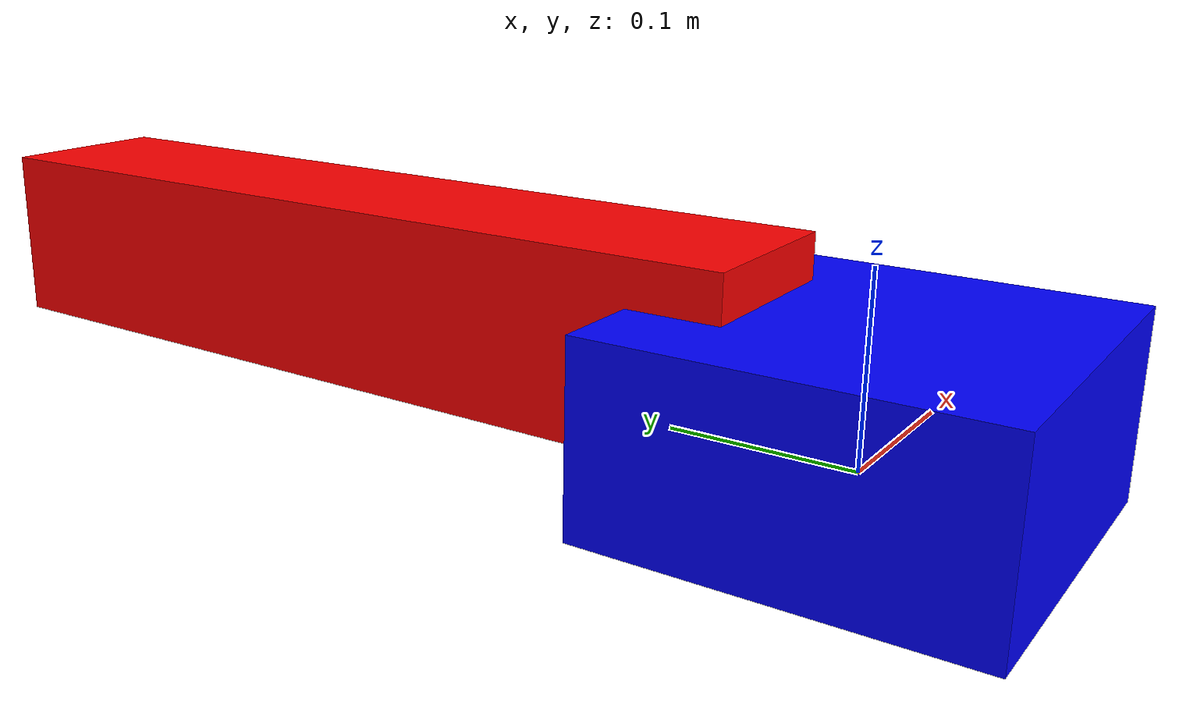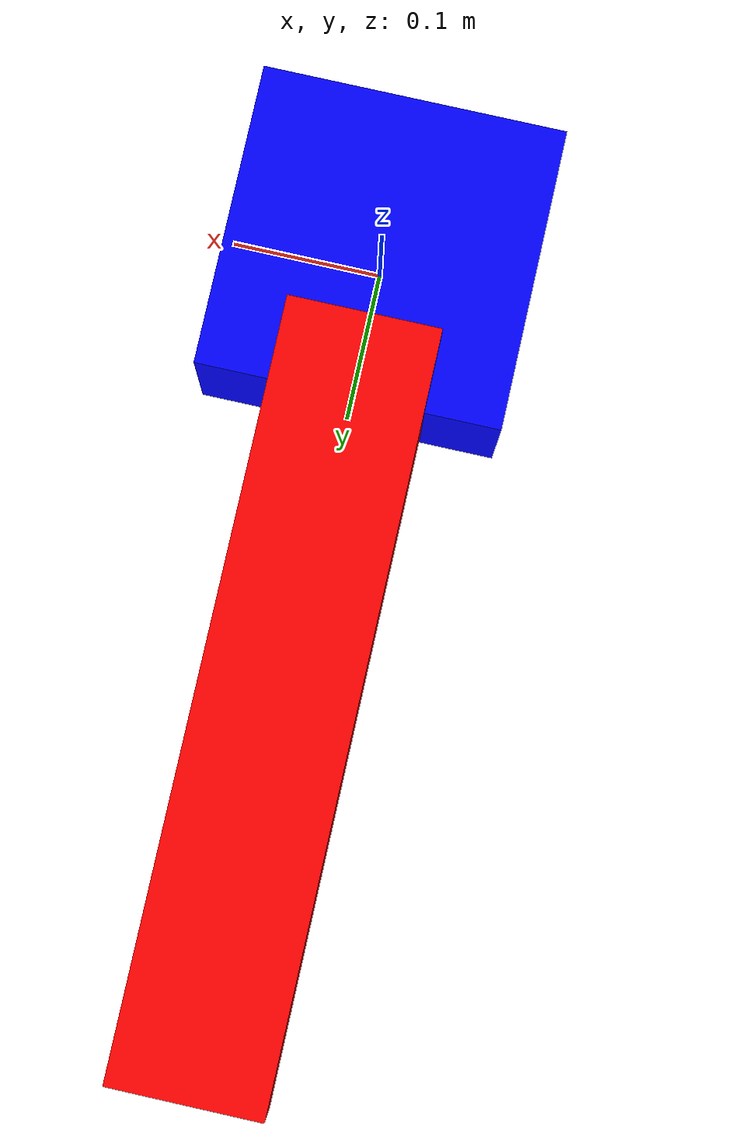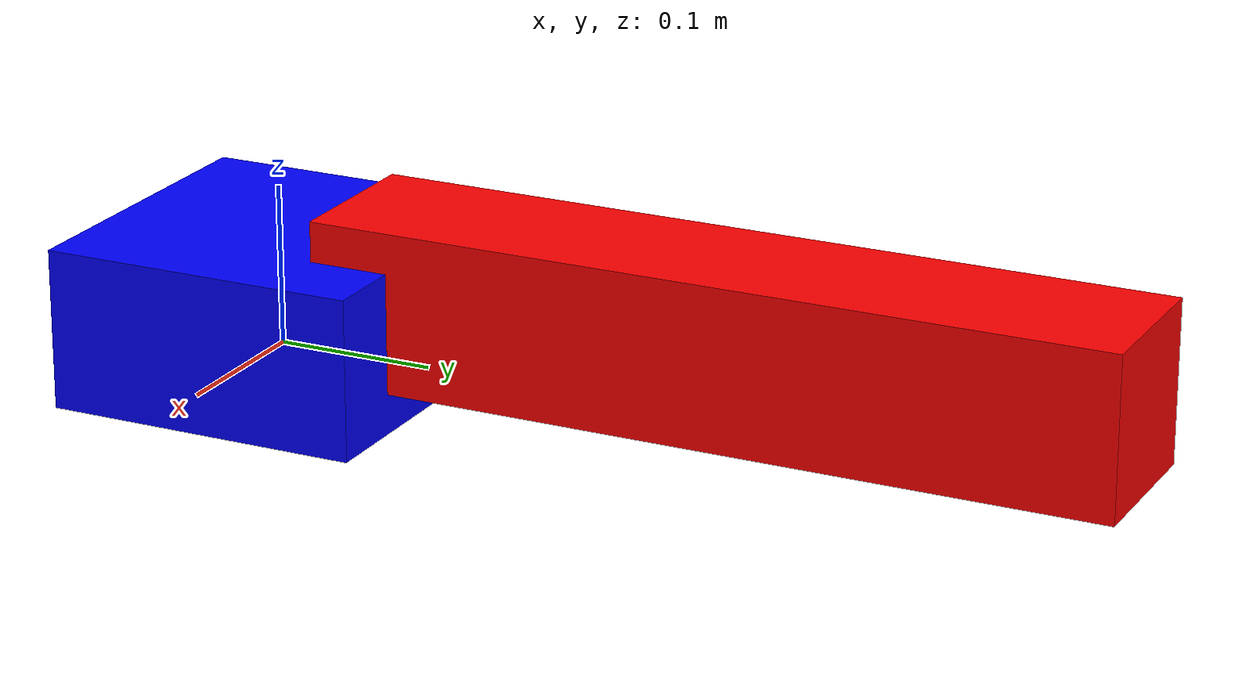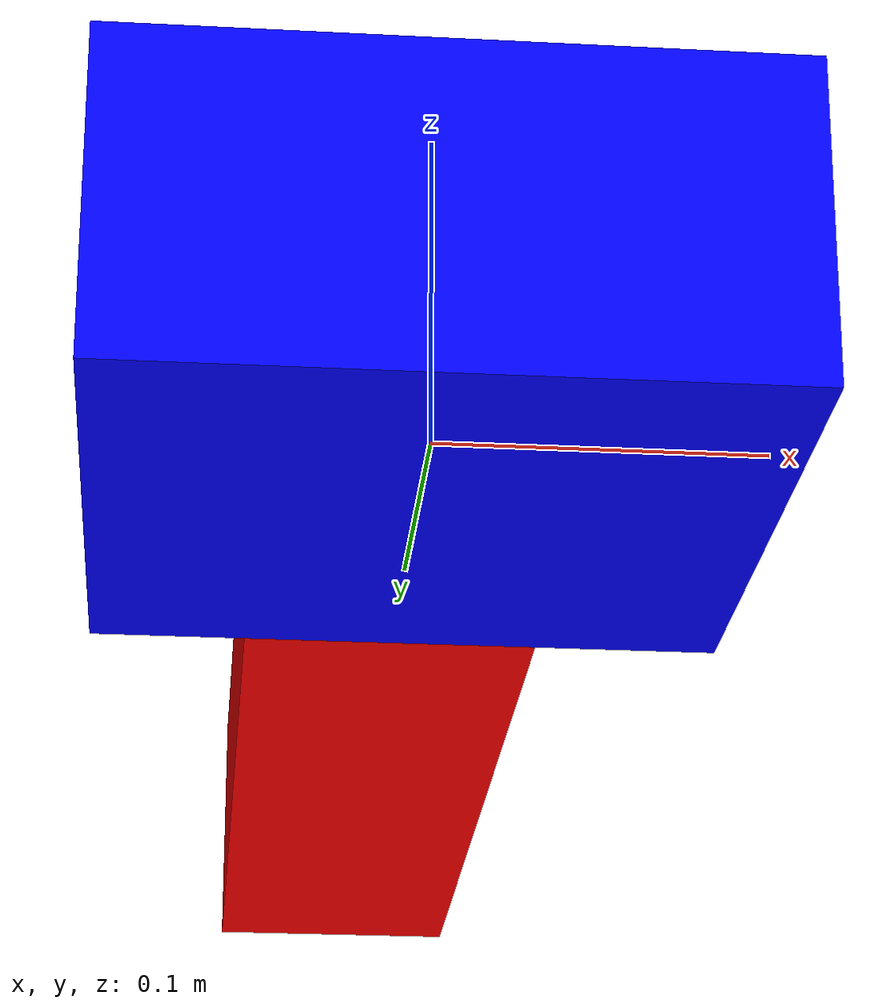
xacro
<?xml version="1.0"?>
<robot xmlns:xacro="http://www.ros.org/wiki/xacro" name="simple_robot">

    <material name="bright_red">
        <color rgba="1.0 0.0 0.0 1.0"/>
    </material>

    <material name="bright_blue">
        <color rgba="0.0 0.0 1.0 1.0"/>
    </material>

    <link name="base_link">
        <visual>
            <origin xyz="0 0 0.025" rpy="0 0 0"/>
            <geometry>
                <!-- cylinder radius="0.2" length="0.05"/ -->
                <box size="0.2 0.2 0.1"/>
            </geometry>
            <material name="bright_blue"/>
        </visual>
    </link>

    <link name="moving_link">
        <visual>
            <origin xyz="0 0.3 0" rpy="0 0 0"/>
            <geometry>
                <box size="0.1 0.5 0.1"/>
            </geometry>
            <material name="bright_red"/>
        </visual>
    </link>

    <joint name="joint_1" type="revolute">
        <parent link="base_link"/>
        <child link="moving_link"/>
        <origin xyz="0 0 0.05" rpy="0 0 0"/>
        <axis xyz="0 0 1"/>
        <limit lower="-3.14" upper="3.14" effort="10.0" velocity="1.0"/>
    </joint>

    <ros2_control name="MockHardware" type="system">
        <hardware>
            <plugin>mock_components/GenericSystem</plugin>
            <param name="calculate_dynamics">true</param>
        </hardware>

        <joint name="joint_1">
            <command_interface name="position">
                <param name="min">-3.14</param>
                <param name="max">3.14</param>
            </command_interface>
            <state_interface name="position">
                <param name="initial_value">0.0</param>
            </state_interface>
            <state_interface name="velocity"/>
        </joint>
    </ros2_control>

</robot>
